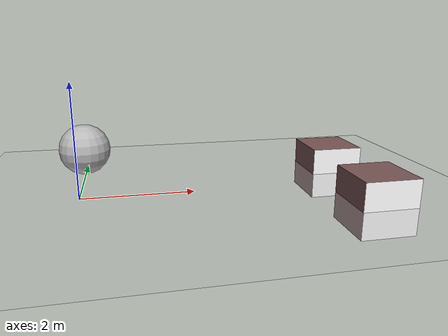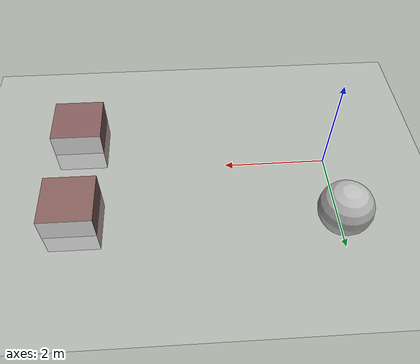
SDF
<?xml version="1.0" ?>
<sdf version="1.6">
  <world name="default">
    <!-- A global light source -->
    <include>
      <uri>model://sun</uri>
    </include>
    <!-- A ground plane -->
    <include>
      <uri>model://ground_plane</uri>
    </include>
    <include>
      <uri>model://box_hot</uri>
      <pose>5 -1 0 0 0 3.14</pose>
    </include>
    <include>
      <uri>model://box_pink</uri>
      <pose>5 1 0 0 0 3.14</pose>
    </include>
    <model name="sphere">
      <pose>0 1.5 0.5 0 0 0</pose>
      <link name="link">
        <collision name="collision">
          <geometry>
            <sphere>
              <radius>0.5</radius>
            </sphere>
          </geometry>
        </collision>
        <visual name="visual">
          <geometry>
            <sphere>
              <radius>0.5</radius>
            </sphere>
          </geometry>
          <material>
            <script>Gazebo/WoodPallet</script>
          </material>
        </visual>
        <audio_source>
          <uri>file://media/audio/cheer.wav</uri>
          <pitch>2.0</pitch>
          <gain>1.0</gain>
          <loop>false</loop>
          <contact>
            <collision>collision</collision>
          </contact>
        </audio_source>
      </link>
    </model>
  </world>
</sdf>

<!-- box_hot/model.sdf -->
<sdf version="1.6">
  <model name="box_hot">
    <pose>0 0 0.5 0 0 0</pose>
    <static>true</static>
    <link name="link">
      <collision name="collision">
        <geometry>
          <mesh>
            <scale>0.5 0.5 0.5</scale>
            <uri>model://box_hot/HOT-BOX.dae</uri>
          </mesh>
        </geometry>
      </collision>

      <visual name="visual">
        <geometry>
          <mesh>
            <scale>0.5 0.5 0.5</scale>
            <uri>model://box_hot/HOT-BOX.dae</uri>
          </mesh>
        </geometry>
      </visual>
    </link>
  </model>
</sdf>

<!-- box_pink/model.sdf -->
<sdf version="1.6">
  <model name="box_pink">
    <pose>0 0 0.5 0 0 0</pose>
    <static>true</static>
    <link name="link">
      <collision name="collision">
        <geometry>
          <mesh>
            <scale>0.5 0.5 0.5</scale>
            <uri>model://box_pink/PINK-BOX.dae</uri>
          </mesh>
        </geometry>
      </collision>

      <visual name="visual">
        <geometry>
          <mesh>
            <scale>0.5 0.5 0.5</scale>
            <uri>model://box_pink/PINK-BOX.dae</uri>
          </mesh>
        </geometry>
      </visual>
    </link>
  </model>
</sdf>
